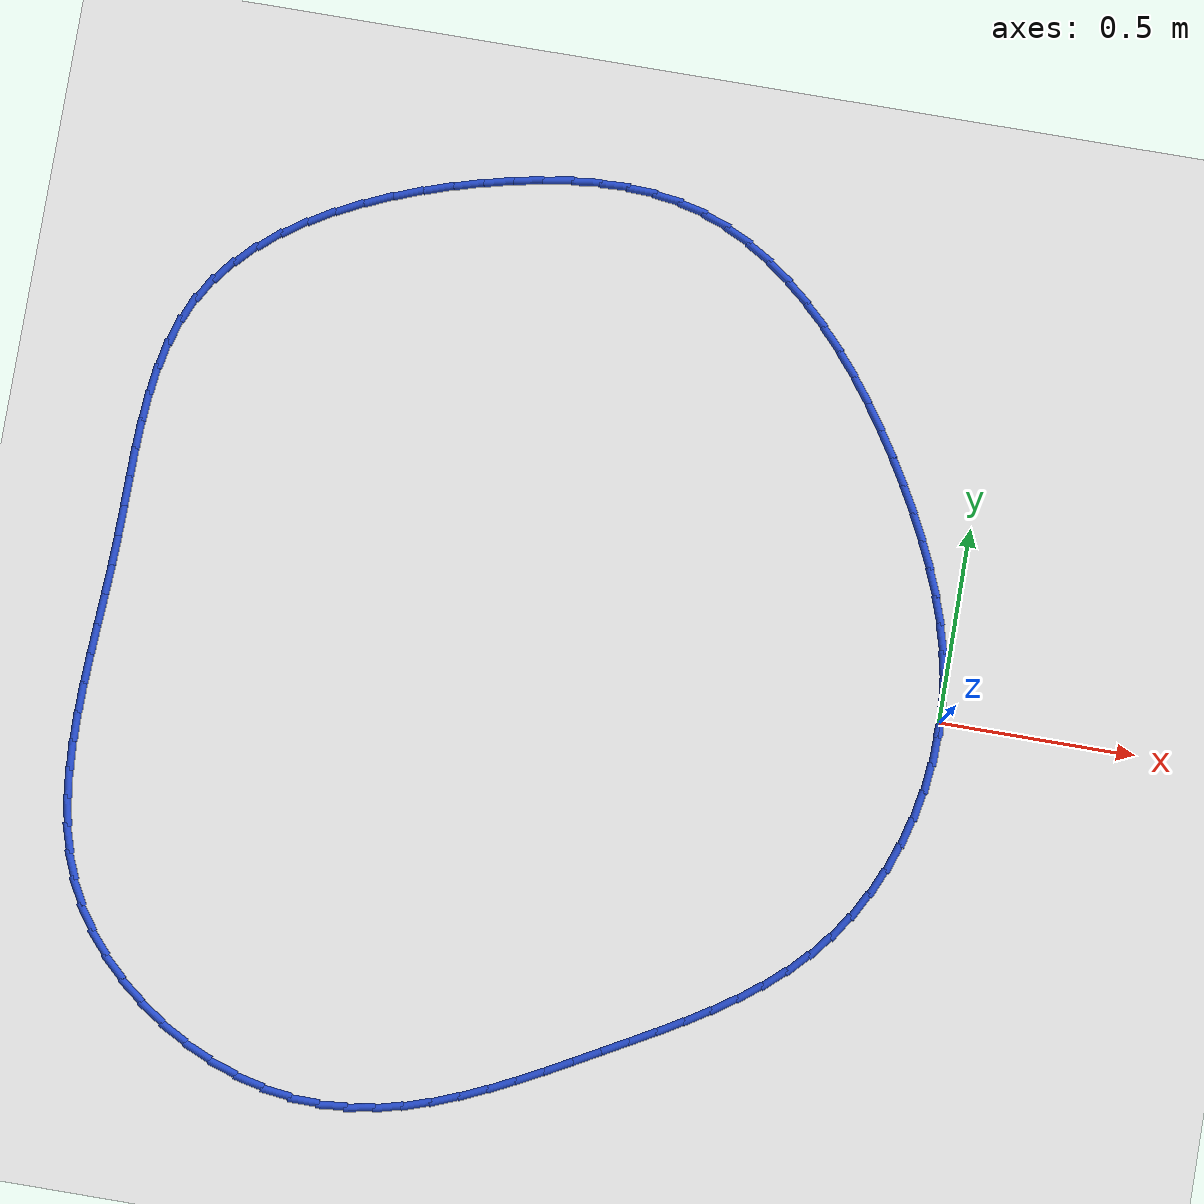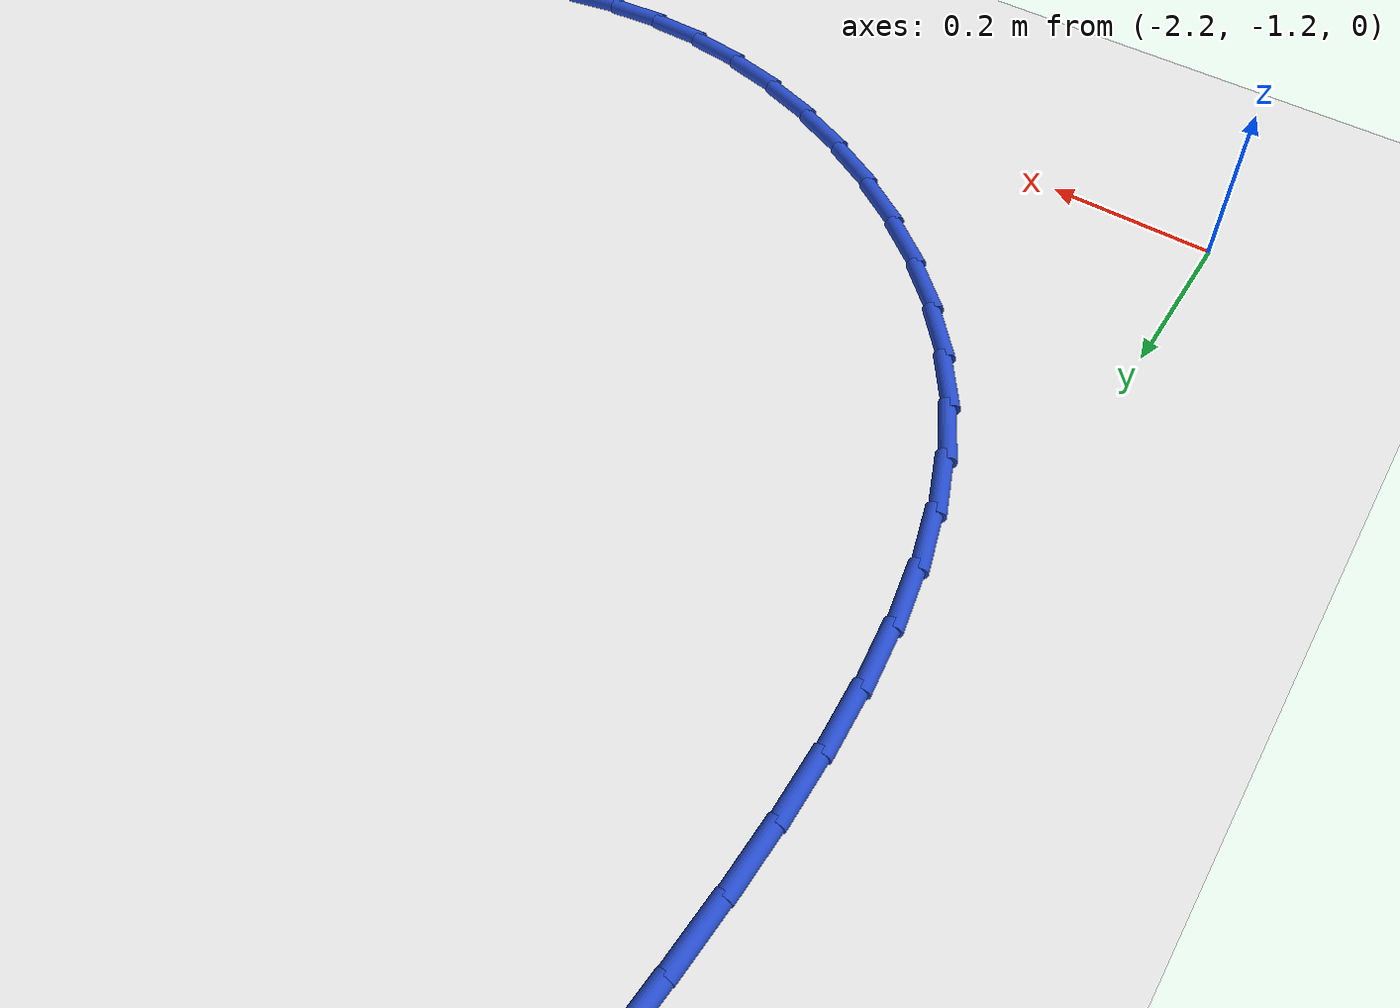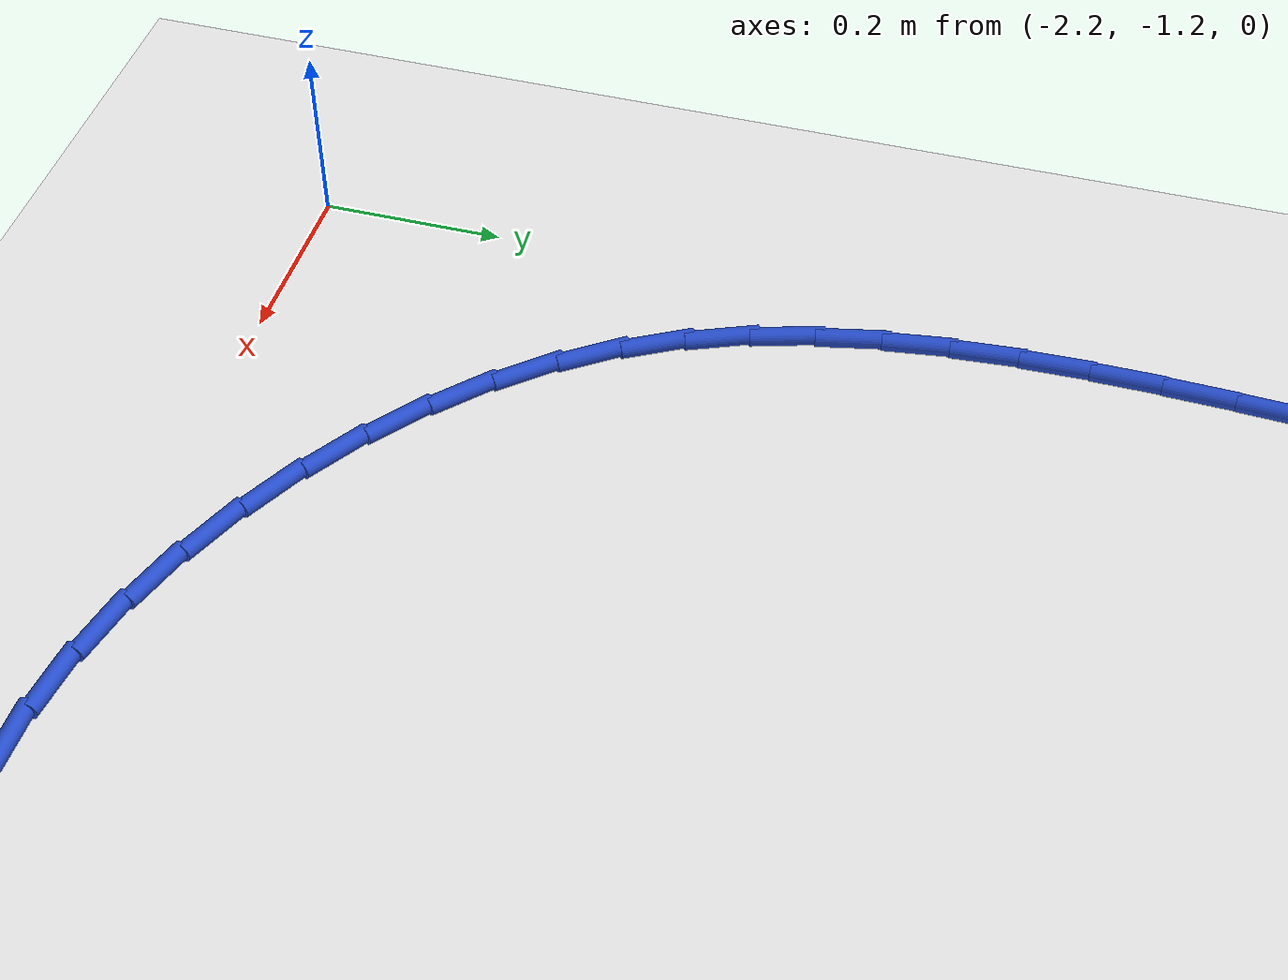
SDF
<sdf version="1.6">
 <world name="default">
  <light name="sun" type="directional">
   <pose>0 0 10 0 -0 0</pose>
   <diffuse>0.8 0.8 0.8 1</diffuse>
   <specular>0.2 0.2 0.2 1</specular>
   <attenuation>
    <range>1000</range>
    <constant>0.9</constant>
    <linear>0.01</linear>
    <quadratic>0.001</quadratic>
   </attenuation>
   <direction>-0.5 0.1 -0.9</direction>
  </light>
  <model name="ground_plane">
   <static>1</static>
   <link name="link">
    <collision name="collision">
     <geometry><plane><normal>0 0 1</normal><size>100 100</size></plane></geometry>
     <surface><friction><ode><mu>100</mu><mu2>50</mu2></ode></friction></surface>
    </collision>
    <visual name="visual">
     <cast_shadows>0</cast_shadows>
     <geometry><plane><normal>0 0 1</normal><size>100 100</size></plane></geometry>
     <material>
      <script><uri>file://media/materials/scripts/gazebo.material</uri><name>Gazebo/WhiteGlow</name></script>
     </material>
    </visual>
   </link>
  </model>
  <gravity>0 0 -9.8</gravity>
  <magnetic_field>6e-06 2.3e-05 -4.2e-05</magnetic_field>
  <atmosphere type="adiabatic"/>
  <physics name="default_physics" default="0" type="ode">
   <max_step_size>0.001</max_step_size>
   <real_time_factor>1</real_time_factor>
   <real_time_update_rate>1000</real_time_update_rate>
  </physics>
  <scene><ambient>0.4 0.4 0.4 1</ambient><background>0.7 0.7 0.7 1</background><shadows>1</shadows></scene>
  <spherical_coordinates>
   <surface_model>EARTH_WGS84</surface_model>
   <latitude_deg>0</latitude_deg>
   <longitude_deg>0</longitude_deg>
   <elevation>0</elevation>
   <heading_deg>0</heading_deg>
  </spherical_coordinates>
  <model name="line">
   <link name="link_0">
    <pose>2.7755575615628914e-17 1.3877787807814457e-16 0.01 0 1.57 -1.5068852918202253</pose>
    <collision name="collision">
     <geometry><cylinder><radius>0.01</radius><length>0.08</length></cylinder></geometry>
    </collision>
    <visual name="visual">
     <material>
      <script><name>Gazebo/Blue</name><uri>file://media/materials/scripts/gazebo.material</uri></script>
     </material>
     <geometry><cylinder><radius>0.01</radius><length>0.08</length></cylinder></geometry>
    </visual>
   </link>
   <link name="link_1">
    <pose>-0.004570571894667977 0.07141720024070906 0.01 0 1.57 -1.4281592210068734</pose>
    <collision name="collision">
     <geometry><cylinder><radius>0.01</radius><length>0.08</length></cylinder></geometry>
    </collision>
    <visual name="visual">
     <material>
      <script><name>Gazebo/Blue</name><uri>file://media/materials/scripts/gazebo.material</uri></script>
     </material>
     <geometry><cylinder><radius>0.01</radius><length>0.08</length></cylinder></geometry>
    </visual>
   </link>
   <link name="link_2">
    <pose>-0.01467478336336173 0.14177472563029664 0.01 0 1.57 -1.3548416416655022</pose>
    <collision name="collision">
     <geometry><cylinder><radius>0.01</radius><length>0.08</length></cylinder></geometry>
    </collision>
    <visual name="visual">
     <material>
      <script><name>Gazebo/Blue</name><uri>file://media/materials/scripts/gazebo.material</uri></script>
     </material>
     <geometry><cylinder><radius>0.01</radius><length>0.08</length></cylinder></geometry>
    </visual>
   </link>
   <link name="link_3">
    <pose>-0.029899119866740573 0.21117321001605954 0.01 0 1.57 -1.2878079500951125</pose>
    <collision name="collision">
     <geometry><cylinder><radius>0.01</radius><length>0.08</length></cylinder></geometry>
    </collision>
    <visual name="visual">
     <material>
      <script><name>Gazebo/Blue</name><uri>file://media/materials/scripts/gazebo.material</uri></script>
     </material>
     <geometry><cylinder><radius>0.01</radius><length>0.08</length></cylinder></geometry>
    </visual>
   </link>
   <link name="link_4">
    <pose>-0.04983006686546391 0.2797132872452947 0.01 0 1.57 -1.2275620438327075</pose>
    <collision name="collision">
     <geometry><cylinder><radius>0.01</radius><length>0.08</length></cylinder></geometry>
    </collision>
    <visual name="visual">
     <material>
      <script><name>Gazebo/Blue</name><uri>file://media/materials/scripts/gazebo.material</uri></script>
     </material>
     <geometry><cylinder><radius>0.01</radius><length>0.08</length></cylinder></geometry>
    </visual>
   </link>
   <link name="link_5">
    <pose>-0.07405410982019106 0.34749559116529866 0.01 0 1.57 -1.1742952343391797</pose>
    <collision name="collision">
     <geometry><cylinder><radius>0.01</radius><length>0.08</length></cylinder></geometry>
    </collision>
    <visual name="visual">
     <material>
      <script><name>Gazebo/Blue</name><uri>file://media/materials/scripts/gazebo.material</uri></script>
     </material>
     <geometry><cylinder><radius>0.01</radius><length>0.08</length></cylinder></geometry>
    </visual>
   </link>
   <link name="link_6">
    <pose>-0.10215773419158147 0.41462075562336875 0.01 0 1.57 -1.1279661740519655</pose>
    <collision name="collision">
     <geometry><cylinder><radius>0.01</radius><length>0.08</length></cylinder></geometry>
    </collision>
    <visual name="visual">
     <material>
      <script><name>Gazebo/Blue</name><uri>file://media/materials/scripts/gazebo.material</uri></script>
     </material>
     <geometry><cylinder><radius>0.01</radius><length>0.08</length></cylinder></geometry>
    </visual>
   </link>
   <link name="link_7">
    <pose>-0.1337274254402945 0.48118941446680136 0.01 0 1.57 -1.0883811219941482</pose>
    <collision name="collision">
     <geometry><cylinder><radius>0.01</radius><length>0.08</length></cylinder></geometry>
    </collision>
    <visual name="visual">
     <material>
      <script><name>Gazebo/Blue</name><uri>file://media/materials/scripts/gazebo.material</uri></script>
     </material>
     <geometry><cylinder><radius>0.01</radius><length>0.08</length></cylinder></geometry>
    </visual>
   </link>
   <link name="link_8">
    <pose>-0.1683496690269895 0.5473022015428936 0.01 0 1.57 -1.055177480647561</pose>
    <collision name="collision">
     <geometry><cylinder><radius>0.01</radius><length>0.08</length></cylinder></geometry>
    </collision>
    <visual name="visual">
     <material>
      <script><name>Gazebo/Blue</name><uri>file://media/materials/scripts/gazebo.material</uri></script>
     </material>
     <geometry><cylinder><radius>0.01</radius><length>0.08</length></cylinder></geometry>
    </visual>
   </link>
   <link name="link_9">
    <pose>-0.20561474490875528 0.613053394124828 0.01 0 1.57 -1.0244017931867717</pose>
    <collision name="collision">
     <geometry><cylinder><radius>0.01</radius><length>0.08</length></cylinder></geometry>
    </collision>
    <visual name="visual">
     <material>
      <script><name>Gazebo/Blue</name><uri>file://media/materials/scripts/gazebo.material</uri></script>
     </material>
     <geometry><cylinder><radius>0.01</radius><length>0.08</length></cylinder></geometry>
    </visual>
   </link>
   <link name="link_10">
    <pose>-0.24527450674808823 0.6782665997797175 0.01 0 1.57 -0.9907218529997827</pose>
    <collision name="collision">
     <geometry><cylinder><radius>0.01</radius><length>0.08</length></cylinder></geometry>
    </collision>
    <visual name="visual">
     <material>
      <script><name>Gazebo/Blue</name><uri>file://media/materials/scripts/gazebo.material</uri></script>
     </material>
     <geometry><cylinder><radius>0.01</radius><length>0.08</length></cylinder></geometry>
    </visual>
   </link>
   <link name="link_11">
    <pose>-0.28729921661326546 0.7423995463738463 0.01 0 1.57 -0.953268824130676</pose>
    <collision name="collision">
     <geometry><cylinder><radius>0.01</radius><length>0.08</length></cylinder></geometry>
    </collision>
    <visual name="visual">
     <material>
      <script><name>Gazebo/Blue</name><uri>file://media/materials/scripts/gazebo.material</uri></script>
     </material>
     <geometry><cylinder><radius>0.01</radius><length>0.08</length></cylinder></geometry>
    </visual>
   </link>
   <link name="link_12">
    <pose>-0.33167462270274517 0.8048840192707029 0.01 0 1.57 -0.9114415036197676</pose>
    <collision name="collision">
     <geometry><cylinder><radius>0.01</radius><length>0.08</length></cylinder></geometry>
    </collision>
    <visual name="visual">
     <material>
      <script><name>Gazebo/Blue</name><uri>file://media/materials/scripts/gazebo.material</uri></script>
     </material>
     <geometry><cylinder><radius>0.01</radius><length>0.08</length></cylinder></geometry>
    </visual>
   </link>
   <link name="link_13">
    <pose>-0.3783864732149859 0.8651518038337761 0.01 0 1.57 -0.8645516532423868</pose>
    <collision name="collision">
     <geometry><cylinder><radius>0.01</radius><length>0.08</length></cylinder></geometry>
    </collision>
    <visual name="visual">
     <material>
      <script><name>Gazebo/Blue</name><uri>file://media/materials/scripts/gazebo.material</uri></script>
     </material>
     <geometry><cylinder><radius>0.01</radius><length>0.08</length></cylinder></geometry>
    </visual>
   </link>
   <link name="link_14">
    <pose>-0.42742051634844586 0.9226346854265541 0.01 0 1.57 -0.8118235441664357</pose>
    <collision name="collision">
     <geometry><cylinder><radius>0.01</radius><length>0.08</length></cylinder></geometry>
    </collision>
    <visual name="visual">
     <material>
      <script><name>Gazebo/Blue</name><uri>file://media/materials/scripts/gazebo.material</uri></script>
     </material>
     <geometry><cylinder><radius>0.01</radius><length>0.08</length></cylinder></geometry>
    </visual>
   </link>
   <link name="link_15">
    <pose>-0.4787625003015832 0.9767644494125252 0.01 0 1.57 -0.7524064236930601</pose>
    <collision name="collision">
     <geometry><cylinder><radius>0.01</radius><length>0.08</length></cylinder></geometry>
    </collision>
    <visual name="visual">
     <material>
      <script><name>Gazebo/Blue</name><uri>file://media/materials/scripts/gazebo.material</uri></script>
     </material>
     <geometry><cylinder><radius>0.01</radius><length>0.08</length></cylinder></geometry>
    </visual>
   </link>
   <link name="link_16">
    <pose>-0.5323981732728567 1.0269728811551784 0.01 0 1.57 -0.685409738260873</pose>
    <collision name="collision">
     <geometry><cylinder><radius>0.01</radius><length>0.08</length></cylinder></geometry>
    </collision>
    <visual name="visual">
     <material>
      <script><name>Gazebo/Blue</name><uri>file://media/materials/scripts/gazebo.material</uri></script>
     </material>
     <geometry><cylinder><radius>0.01</radius><length>0.08</length></cylinder></geometry>
    </visual>
   </link>
   <link name="link_17">
    <pose>-0.5883132834607243 1.0726917660180022 0.01 0 1.57 -0.6099747957804855</pose>
    <collision name="collision">
     <geometry><cylinder><radius>0.01</radius><length>0.08</length></cylinder></geometry>
    </collision>
    <visual name="visual">
     <material>
      <script><name>Gazebo/Blue</name><uri>file://media/materials/scripts/gazebo.material</uri></script>
     </material>
     <geometry><cylinder><radius>0.01</radius><length>0.08</length></cylinder></geometry>
    </visual>
   </link>
   <link name="link_18">
    <pose>-0.6464935790636441 1.1133528893644844 0.01 0 1.57 -0.5253984628705456</pose>
    <collision name="collision">
     <geometry><cylinder><radius>0.01</radius><length>0.08</length></cylinder></geometry>
    </collision>
    <visual name="visual">
     <material>
      <script><name>Gazebo/Blue</name><uri>file://media/materials/scripts/gazebo.material</uri></script>
     </material>
     <geometry><cylinder><radius>0.01</radius><length>0.08</length></cylinder></geometry>
    </visual>
   </link>
   <link name="link_19">
    <pose>-0.7069248082800752 1.1483880365581143 0.01 0 1.57 -0.43131938700887035</pose>
    <collision name="collision">
     <geometry><cylinder><radius>0.01</radius><length>0.08</length></cylinder></geometry>
    </collision>
    <visual name="visual">
     <material>
      <script><name>Gazebo/Blue</name><uri>file://media/materials/scripts/gazebo.material</uri></script>
     </material>
     <geometry><cylinder><radius>0.01</radius><length>0.08</length></cylinder></geometry>
    </visual>
   </link>
   <link name="link_20">
    <pose>-0.7695927193084753 1.1772289929623798 0.01 0 1.57 -0.3279581159730558</pose>
    <collision name="collision">
     <geometry><cylinder><radius>0.01</radius><length>0.08</length></cylinder></geometry>
    </collision>
    <visual name="visual">
     <material>
      <script><name>Gazebo/Blue</name><uri>file://media/materials/scripts/gazebo.material</uri></script>
     </material>
     <geometry><cylinder><radius>0.01</radius><length>0.08</length></cylinder></geometry>
    </visual>
   </link>
   <link name="link_21">
    <pose>-0.8344830474018945 1.1993076035733399 0.01 0 1.57 -0.219819404958218</pose>
    <collision name="collision">
     <geometry><cylinder><radius>0.01</radius><length>0.08</length></cylinder></geometry>
    </collision>
    <visual name="visual">
     <material>
      <script><name>Gazebo/Blue</name><uri>file://media/materials/scripts/gazebo.material</uri></script>
     </material>
     <geometry><cylinder><radius>0.01</radius><length>0.08</length></cylinder></geometry>
    </visual>
   </link>
   <link name="link_22">
    <pose>-0.9015310732003439 1.2142881307932183 0.01 0 1.57 -0.1198401299108558</pose>
    <collision name="collision">
     <geometry><cylinder><radius>0.01</radius><length>0.08</length></cylinder></geometry>
    </collision>
    <visual name="visual">
     <material>
      <script><name>Gazebo/Blue</name><uri>file://media/materials/scripts/gazebo.material</uri></script>
     </material>
     <geometry><cylinder><radius>0.01</radius><length>0.08</length></cylinder></geometry>
    </visual>
   </link>
   <link name="link_23">
    <pose>-0.9705072633853802 1.222594046745936 0.01 0 1.57 -0.03126826414804238</pose>
    <collision name="collision">
     <geometry><cylinder><radius>0.01</radius><length>0.08</length></cylinder></geometry>
    </collision>
    <visual name="visual">
     <material>
      <script><name>Gazebo/Blue</name><uri>file://media/materials/scripts/gazebo.material</uri></script>
     </material>
     <geometry><cylinder><radius>0.01</radius><length>0.08</length></cylinder></geometry>
    </visual>
   </link>
   <link name="link_24">
    <pose>-1.0411484858295872 1.2248035952910719 0.01 0 1.57 0.04589267908729041</pose>
    <collision name="collision">
     <geometry><cylinder><radius>0.01</radius><length>0.08</length></cylinder></geometry>
    </collision>
    <visual name="visual">
     <material>
      <script><name>Gazebo/Blue</name><uri>file://media/materials/scripts/gazebo.material</uri></script>
     </material>
     <geometry><cylinder><radius>0.01</radius><length>0.08</length></cylinder></geometry>
    </visual>
   </link>
   <link name="link_25">
    <pose>-1.1131916084055484 1.2214950202882033 0.01 0 1.57 0.11223800349829531</pose>
    <collision name="collision">
     <geometry><cylinder><radius>0.01</radius><length>0.08</length></cylinder></geometry>
    </collision>
    <visual name="visual">
     <material>
      <script><name>Gazebo/Blue</name><uri>file://media/materials/scripts/gazebo.material</uri></script>
     </material>
     <geometry><cylinder><radius>0.01</radius><length>0.08</length></cylinder></geometry>
    </visual>
   </link>
   <link name="link_26">
    <pose>-1.1863734989858479 1.2132465655969096 0.01 0 1.57 0.1686567016478754</pose>
    <collision name="collision">
     <geometry><cylinder><radius>0.01</radius><length>0.08</length></cylinder></geometry>
    </collision>
    <visual name="visual">
     <material>
      <script><name>Gazebo/Blue</name><uri>file://media/materials/scripts/gazebo.material</uri></script>
     </material>
     <geometry><cylinder><radius>0.01</radius><length>0.08</length></cylinder></geometry>
    </visual>
   </link>
   <link name="link_27">
    <pose>-1.2604310254430677 1.2006364750767677 0.01 0 1.57 0.21611691676653727</pose>
    <collision name="collision">
     <geometry><cylinder><radius>0.01</radius><length>0.08</length></cylinder></geometry>
    </collision>
    <visual name="visual">
     <material>
      <script><name>Gazebo/Blue</name><uri>file://media/materials/scripts/gazebo.material</uri></script>
     </material>
     <geometry><cylinder><radius>0.01</radius><length>0.08</length></cylinder></geometry>
    </visual>
   </link>
   <link name="link_28">
    <pose>-1.3351010556497924 1.184242992587356 0.01 0 1.57 0.2557997736786115</pose>
    <collision name="collision">
     <geometry><cylinder><radius>0.01</radius><length>0.08</length></cylinder></geometry>
    </collision>
    <visual name="visual">
     <material>
      <script><name>Gazebo/Blue</name><uri>file://media/materials/scripts/gazebo.material</uri></script>
     </material>
     <geometry><cylinder><radius>0.01</radius><length>0.08</length></cylinder></geometry>
    </visual>
   </link>
   <link name="link_29">
    <pose>-1.410107930702011 1.164626514363667 0.01 0 1.57 0.29356695686492973</pose>
    <collision name="collision">
     <geometry><cylinder><radius>0.01</radius><length>0.08</length></cylinder></geometry>
    </collision>
    <visual name="visual">
     <material>
      <script><name>Gazebo/Blue</name><uri>file://media/materials/scripts/gazebo.material</uri></script>
     </material>
     <geometry><cylinder><radius>0.01</radius><length>0.08</length></cylinder></geometry>
    </visual>
   </link>
   <link name="link_30">
    <pose>-1.4849362127376498 1.142005809663047 0.01 0 1.57 0.3347681686645047</pose>
    <collision name="collision">
     <geometry><cylinder><radius>0.01</radius><length>0.08</length></cylinder></geometry>
    </collision>
    <visual name="visual">
     <material>
      <script><name>Gazebo/Blue</name><uri>file://media/materials/scripts/gazebo.material</uri></script>
     </material>
     <geometry><cylinder><radius>0.01</radius><length>0.08</length></cylinder></geometry>
    </visual>
   </link>
   <link name="link_31">
    <pose>-1.5588548121957997 1.11629239626969 0.01 0 1.57 0.3804765004712375</pose>
    <collision name="collision">
     <geometry><cylinder><radius>0.01</radius><length>0.08</length></cylinder></geometry>
    </collision>
    <visual name="visual">
     <material>
      <script><name>Gazebo/Blue</name><uri>file://media/materials/scripts/gazebo.material</uri></script>
     </material>
     <geometry><cylinder><radius>0.01</radius><length>0.08</length></cylinder></geometry>
    </visual>
   </link>
   <link name="link_32">
    <pose>-1.6311249552106193 1.0873868436932184 0.01 0 1.57 0.4317407036281792</pose>
    <collision name="collision">
     <geometry><cylinder><radius>0.01</radius><length>0.08</length></cylinder></geometry>
    </collision>
    <visual name="visual">
     <material>
      <script><name>Gazebo/Blue</name><uri>file://media/materials/scripts/gazebo.material</uri></script>
     </material>
     <geometry><cylinder><radius>0.01</radius><length>0.08</length></cylinder></geometry>
    </visual>
   </link>
   <link name="link_33">
    <pose>-1.7010078679162686 1.0551897214432557 0.01 0 1.57 0.48977581661353925</pose>
    <collision name="collision">
     <geometry><cylinder><radius>0.01</radius><length>0.08</length></cylinder></geometry>
    </collision>
    <visual name="visual">
     <material>
      <script><name>Gazebo/Blue</name><uri>file://media/materials/scripts/gazebo.material</uri></script>
     </material>
     <geometry><cylinder><radius>0.01</radius><length>0.08</length></cylinder></geometry>
    </visual>
   </link>
   <link name="link_34">
    <pose>-1.7677647764469069 1.019601599029424 0.01 0 1.57 0.5559763439568868</pose>
    <collision name="collision">
     <geometry><cylinder><radius>0.01</radius><length>0.08</length></cylinder></geometry>
    </collision>
    <visual name="visual">
     <material>
      <script><name>Gazebo/Blue</name><uri>file://media/materials/scripts/gazebo.material</uri></script>
     </material>
     <geometry><cylinder><radius>0.01</radius><length>0.08</length></cylinder></geometry>
    </visual>
   </link>
   <link name="link_35">
    <pose>-1.8306569069366943 0.9805230459613474 0.01 0 1.57 0.6318943533631234</pose>
    <collision name="collision">
     <geometry><cylinder><radius>0.01</radius><length>0.08</length></cylinder></geometry>
    </collision>
    <visual name="visual">
     <material>
      <script><name>Gazebo/Blue</name><uri>file://media/materials/scripts/gazebo.material</uri></script>
     </material>
     <geometry><cylinder><radius>0.01</radius><length>0.08</length></cylinder></geometry>
    </visual>
   </link>
   <link name="link_36">
    <pose>-1.888945485519789 0.9378546317486491 0.01 0 1.57 0.7191479856915383</pose>
    <collision name="collision">
     <geometry><cylinder><radius>0.01</radius><length>0.08</length></cylinder></geometry>
    </collision>
    <visual name="visual">
     <material>
      <script><name>Gazebo/Blue</name><uri>file://media/materials/scripts/gazebo.material</uri></script>
     </material>
     <geometry><cylinder><radius>0.01</radius><length>0.08</length></cylinder></geometry>
    </visual>
   </link>
   <link name="link_37">
    <pose>-1.9418917383303511 0.891496925900951 0.01 0 1.57 0.8192088108098029</pose>
    <collision name="collision">
     <geometry><cylinder><radius>0.01</radius><length>0.08</length></cylinder></geometry>
    </collision>
    <visual name="visual">
     <material>
      <script><name>Gazebo/Blue</name><uri>file://media/materials/scripts/gazebo.material</uri></script>
     </material>
     <geometry><cylinder><radius>0.01</radius><length>0.08</length></cylinder></geometry>
    </visual>
   </link>
   <link name="link_38">
    <pose>-1.9887568915025406 0.8413504979278768 0.01 0 1.57 0.9330125830756663</pose>
    <collision name="collision">
     <geometry><cylinder><radius>0.01</radius><length>0.08</length></cylinder></geometry>
    </collision>
    <visual name="visual">
     <material>
      <script><name>Gazebo/Blue</name><uri>file://media/materials/scripts/gazebo.material</uri></script>
     </material>
     <geometry><cylinder><radius>0.01</radius><length>0.08</length></cylinder></geometry>
    </visual>
   </link>
   <link name="link_39">
    <pose>-2.0288021711705166 0.7873159173390495 0.01 0 1.57 1.060236686439888</pose>
    <collision name="collision">
     <geometry><cylinder><radius>0.01</radius><length>0.08</length></cylinder></geometry>
    </collision>
    <visual name="visual">
     <material>
      <script><name>Gazebo/Blue</name><uri>file://media/materials/scripts/gazebo.material</uri></script>
     </material>
     <geometry><cylinder><radius>0.01</radius><length>0.08</length></cylinder></geometry>
    </visual>
   </link>
   <link name="link_40">
    <pose>-2.0612984154397704 0.7292966163073898 0.01 0 1.57 1.1887985320025471</pose>
    <collision name="collision">
     <geometry><cylinder><radius>0.01</radius><length>0.08</length></cylinder></geometry>
    </collision>
    <visual name="visual">
     <material>
      <script><name>Gazebo/Blue</name><uri>file://media/materials/scripts/gazebo.material</uri></script>
     </material>
     <geometry><cylinder><radius>0.01</radius><length>0.08</length></cylinder></geometry>
    </visual>
   </link>
   <link name="link_41">
    <pose>-2.0861681778938355 0.6673901226720739 0.01 0 1.57 1.2989967847882893</pose>
    <collision name="collision">
     <geometry><cylinder><radius>0.01</radius><length>0.08</length></cylinder></geometry>
    </collision>
    <visual name="visual">
     <material>
      <script><name>Gazebo/Blue</name><uri>file://media/materials/scripts/gazebo.material</uri></script>
     </material>
     <geometry><cylinder><radius>0.01</radius><length>0.08</length></cylinder></geometry>
    </visual>
   </link>
   <link name="link_42">
    <pose>-2.1043898308647657 0.6020084110674552 0.01 0 1.57 1.3879877029547052</pose>
    <collision name="collision">
     <geometry><cylinder><radius>0.01</radius><length>0.08</length></cylinder></geometry>
    </collision>
    <visual name="visual">
     <material>
      <script><name>Gazebo/Blue</name><uri>file://media/materials/scripts/gazebo.material</uri></script>
     </material>
     <geometry><cylinder><radius>0.01</radius><length>0.08</length></cylinder></geometry>
    </visual>
   </link>
   <link name="link_43">
    <pose>-2.117038124305312 0.5335921595715386 0.01 0 1.57 1.4565283449143323</pose>
    <collision name="collision">
     <geometry><cylinder><radius>0.01</radius><length>0.08</length></cylinder></geometry>
    </collision>
    <visual name="visual">
     <material>
      <script><name>Gazebo/Blue</name><uri>file://media/materials/scripts/gazebo.material</uri></script>
     </material>
     <geometry><cylinder><radius>0.01</radius><length>0.08</length></cylinder></geometry>
    </visual>
   </link>
   <link name="link_44">
    <pose>-2.125187808168219 0.4625820462623289 0.01 0 1.57 1.5062931070265098</pose>
    <collision name="collision">
     <geometry><cylinder><radius>0.01</radius><length>0.08</length></cylinder></geometry>
    </collision>
    <visual name="visual">
     <material>
      <script><name>Gazebo/Blue</name><uri>file://media/materials/scripts/gazebo.material</uri></script>
     </material>
     <geometry><cylinder><radius>0.01</radius><length>0.08</length></cylinder></geometry>
    </visual>
   </link>
   <link name="link_45">
    <pose>-2.129913632406236 0.38941874921783115 0.01 0 1.57 1.539064889740989</pose>
    <collision name="collision">
     <geometry><cylinder><radius>0.01</radius><length>0.08</length></cylinder></geometry>
    </collision>
    <visual name="visual">
     <material>
      <script><name>Gazebo/Blue</name><uri>file://media/materials/scripts/gazebo.material</uri></script>
     </material>
     <geometry><cylinder><radius>0.01</radius><length>0.08</length></cylinder></geometry>
    </visual>
   </link>
   <link name="link_46">
    <pose>-2.1322903469721126 0.3145429465160502 0.01 0 1.57 1.5563207896692506</pose>
    <collision name="collision">
     <geometry><cylinder><radius>0.01</radius><length>0.08</length></cylinder></geometry>
    </collision>
    <visual name="visual">
     <material>
      <script><name>Gazebo/Blue</name><uri>file://media/materials/scripts/gazebo.material</uri></script>
     </material>
     <geometry><cylinder><radius>0.01</radius><length>0.08</length></cylinder></geometry>
    </visual>
   </link>
   <link name="link_47">
    <pose>-2.133392701818595 0.2383953162349909 0.01 0 1.57 1.5590696704119282</pose>
    <collision name="collision">
     <geometry><cylinder><radius>0.01</radius><length>0.08</length></cylinder></geometry>
    </collision>
    <visual name="visual">
     <material>
      <script><name>Gazebo/Blue</name><uri>file://media/materials/scripts/gazebo.material</uri></script>
     </material>
     <geometry><cylinder><radius>0.01</radius><length>0.08</length></cylinder></geometry>
    </visual>
   </link>
   <link name="link_48">
    <pose>-2.1342954468984323 0.16141653645265874 0.01 0 1.57 1.5478471858867513</pose>
    <collision name="collision">
     <geometry><cylinder><radius>0.01</radius><length>0.08</length></cylinder></geometry>
    </collision>
    <visual name="visual">
     <material>
      <script><name>Gazebo/Blue</name><uri>file://media/materials/scripts/gazebo.material</uri></script>
     </material>
     <geometry><cylinder><radius>0.01</radius><length>0.08</length></cylinder></geometry>
    </visual>
   </link>
   <link name="link_49">
    <pose>-2.1360713222809458 0.08404703421229069 0.01 0 1.57 1.5291230426263862</pose>
    <collision name="collision">
     <geometry><cylinder><radius>0.01</radius><length>0.08</length></cylinder></geometry>
    </collision>
    <visual name="visual">
     <material>
      <script><name>Gazebo/Blue</name><uri>file://media/materials/scripts/gazebo.material</uri></script>
     </material>
     <geometry><cylinder><radius>0.01</radius><length>0.08</length></cylinder></geometry>
    </visual>
   </link>
   <link name="link_50">
    <pose>-2.1392979373990024 0.006665394660066698 0.01 0 1.57 1.5175239455473737</pose>
    <collision name="collision">
     <geometry><cylinder><radius>0.01</radius><length>0.08</length></cylinder></geometry>
    </collision>
    <visual name="visual">
     <material>
      <script><name>Gazebo/Blue</name><uri>file://media/materials/scripts/gazebo.material</uri></script>
     </material>
     <geometry><cylinder><radius>0.01</radius><length>0.08</length></cylinder></geometry>
    </visual>
   </link>
   <link name="link_51">
    <pose>-2.1434122027142877 -0.07049227054494246 0.01 0 1.57 1.5150813720474887</pose>
    <collision name="collision">
     <geometry><cylinder><radius>0.01</radius><length>0.08</length></cylinder></geometry>
    </collision>
    <visual name="visual">
     <material>
      <script><name>Gazebo/Blue</name><uri>file://media/materials/scripts/gazebo.material</uri></script>
     </material>
     <geometry><cylinder><radius>0.01</radius><length>0.08</length></cylinder></geometry>
    </visual>
   </link>
   <link name="link_52">
    <pose>-2.1476909470591057 -0.14720984396522319 0.01 0 1.57 1.5219267027107635</pose>
    <collision name="collision">
     <geometry><cylinder><radius>0.01</radius><length>0.08</length></cylinder></geometry>
    </collision>
    <visual name="visual">
     <material>
      <script><name>Gazebo/Blue</name><uri>file://media/materials/scripts/gazebo.material</uri></script>
     </material>
     <geometry><cylinder><radius>0.01</radius><length>0.08</length></cylinder></geometry>
    </visual>
   </link>
   <link name="link_53">
    <pose>-2.151410999265766 -0.22327120816326204 0.01 0 1.57 1.5383802339444728</pose>
    <collision name="collision">
     <geometry><cylinder><radius>0.01</radius><length>0.08</length></cylinder></geometry>
    </collision>
    <visual name="visual">
     <material>
      <script><name>Gazebo/Blue</name><uri>file://media/materials/scripts/gazebo.material</uri></script>
     </material>
     <geometry><cylinder><radius>0.01</radius><length>0.08</length></cylinder></geometry>
    </visual>
   </link>
   <link name="link_54">
    <pose>-2.1538491881665727 -0.2984602457015455 0.01 0 1.57 1.564950901358341</pose>
    <collision name="collision">
     <geometry><cylinder><radius>0.01</radius><length>0.08</length></cylinder></geometry>
    </collision>
    <visual name="visual">
     <material>
      <script><name>Gazebo/Blue</name><uri>file://media/materials/scripts/gazebo.material</uri></script>
     </material>
     <geometry><cylinder><radius>0.01</radius><length>0.08</length></cylinder></geometry>
    </visual>
   </link>
   <link name="link_55">
    <pose>-2.1542823425938322 -0.3725608391425599 0.01 0 1.57 -1.5392796189480158</pose>
    <collision name="collision">
     <geometry><cylinder><radius>0.01</radius><length>0.08</length></cylinder></geometry>
    </collision>
    <visual name="visual">
     <material>
      <script><name>Gazebo/Blue</name><uri>file://media/materials/scripts/gazebo.material</uri></script>
     </material>
     <geometry><cylinder><radius>0.01</radius><length>0.08</length></cylinder></geometry>
    </visual>
   </link>
   <link name="link_56">
    <pose>-2.151987291379851 -0.44535687104879174 0.01 0 1.57 -1.4903473999667016</pose>
    <collision name="collision">
     <geometry><cylinder><radius>0.01</radius><length>0.08</length></cylinder></geometry>
    </collision>
    <visual name="visual">
     <material>
      <script><name>Gazebo/Blue</name><uri>file://media/materials/scripts/gazebo.material</uri></script>
     </material>
     <geometry><cylinder><radius>0.01</radius><length>0.08</length></cylinder></geometry>
    </visual>
   </link>
   <link name="link_57">
    <pose>-2.1462408633569354 -0.5166322239827272 0.01 0 1.57 -1.429083943445047</pose>
    <collision name="collision">
     <geometry><cylinder><radius>0.01</radius><length>0.08</length></cylinder></geometry>
    </collision>
    <visual name="visual">
     <material>
      <script><name>Gazebo/Blue</name><uri>file://media/materials/scripts/gazebo.material</uri></script>
     </material>
     <geometry><cylinder><radius>0.01</radius><length>0.08</length></cylinder></geometry>
    </visual>
   </link>
   <link name="link_58">
    <pose>-2.136319887357392 -0.5861707805068523 0.01 0 1.57 -1.3549538445560314</pose>
    <collision name="collision">
     <geometry><cylinder><radius>0.01</radius><length>0.08</length></cylinder></geometry>
    </collision>
    <visual name="visual">
     <material>
      <script><name>Gazebo/Blue</name><uri>file://media/materials/scripts/gazebo.material</uri></script>
     </material>
     <geometry><cylinder><radius>0.01</radius><length>0.08</length></cylinder></geometry>
    </visual>
   </link>
   <link name="link_59">
    <pose>-2.1215011922135254 -0.653756423183655 0.01 0 1.57 -1.267954709560403</pose>
    <collision name="collision">
     <geometry><cylinder><radius>0.01</radius><length>0.08</length></cylinder></geometry>
    </collision>
    <visual name="visual">
     <material>
      <script><name>Gazebo/Blue</name><uri>file://media/materials/scripts/gazebo.material</uri></script>
     </material>
     <geometry><cylinder><radius>0.01</radius><length>0.08</length></cylinder></geometry>
    </visual>
   </link>
   <link name="link_60">
    <pose>-2.1010616067576438 -0.7191730345756208 0.01 0 1.57 -1.1689891709882854</pose>
    <collision name="collision">
     <geometry><cylinder><radius>0.01</radius><length>0.08</length></cylinder></geometry>
    </collision>
    <visual name="visual">
     <material>
      <script><name>Gazebo/Blue</name><uri>file://media/materials/scripts/gazebo.material</uri></script>
     </material>
     <geometry><cylinder><radius>0.01</radius><length>0.08</length></cylinder></geometry>
    </visual>
   </link>
   <link name="link_61">
    <pose>-2.0742779598220515 -0.7822044972452359 0.01 0 1.57 -1.0601824232571266</pose>
    <collision name="collision">
     <geometry><cylinder><radius>0.01</radius><length>0.08</length></cylinder></geometry>
    </collision>
    <visual name="visual">
     <material>
      <script><name>Gazebo/Blue</name><uri>file://media/materials/scripts/gazebo.material</uri></script>
     </material>
     <geometry><cylinder><radius>0.01</radius><length>0.08</length></cylinder></geometry>
    </visual>
   </link>
   <link name="link_62">
    <pose>-2.0404270802709257 -0.8426346937487661 0.01 0 1.57 -0.9476066130716909</pose>
    <collision name="collision">
     <geometry><cylinder><radius>0.01</radius><length>0.08</length></cylinder></geometry>
    </collision>
    <visual name="visual">
     <material>
      <script><name>Gazebo/Blue</name><uri>file://media/materials/scripts/gazebo.material</uri></script>
     </material>
     <geometry><cylinder><radius>0.01</radius><length>0.08</length></cylinder></geometry>
    </visual>
   </link>
   <link name="link_63">
    <pose>-1.999056725343606 -0.9001946163548886 0.01 0 1.57 -0.8432721789492172</pose>
    <collision name="collision">
     <geometry><cylinder><radius>0.01</radius><length>0.08</length></cylinder></geometry>
    </collision>
    <visual name="visual">
     <material>
      <script><name>Gazebo/Blue</name><uri>file://media/materials/scripts/gazebo.material</uri></script>
     </material>
     <geometry><cylinder><radius>0.01</radius><length>0.08</length></cylinder></geometry>
    </visual>
   </link>
   <link name="link_64">
    <pose>-1.950782475808012 -0.954406798201767 0.01 0 1.57 -0.7475332215439612</pose>
    <collision name="collision">
     <geometry><cylinder><radius>0.01</radius><length>0.08</length></cylinder></geometry>
    </collision>
    <visual name="visual">
     <material>
      <script><name>Gazebo/Blue</name><uri>file://media/materials/scripts/gazebo.material</uri></script>
     </material>
     <geometry><cylinder><radius>0.01</radius><length>0.08</length></cylinder></geometry>
    </visual>
   </link>
   <link name="link_65">
    <pose>-1.8964829538971975 -1.0047424218123697 0.01 0 1.57 -0.6578314044525287</pose>
    <collision name="collision">
     <geometry><cylinder><radius>0.01</radius><length>0.08</length></cylinder></geometry>
    </collision>
    <visual name="visual">
     <material>
      <script><name>Gazebo/Blue</name><uri>file://media/materials/scripts/gazebo.material</uri></script>
     </material>
     <geometry><cylinder><radius>0.01</radius><length>0.08</length></cylinder></geometry>
    </visual>
   </link>
   <link name="link_66">
    <pose>-1.8370367818442184 -1.0506726697096658 0.01 0 1.57 -0.5717474570415242</pose>
    <collision name="collision">
     <geometry><cylinder><radius>0.01</radius><length>0.08</length></cylinder></geometry>
    </collision>
    <visual name="visual">
     <material>
      <script><name>Gazebo/Blue</name><uri>file://media/materials/scripts/gazebo.material</uri></script>
     </material>
     <geometry><cylinder><radius>0.01</radius><length>0.08</length></cylinder></geometry>
    </visual>
   </link>
   <link name="link_67">
    <pose>-1.773322581882128 -1.0916687244166245 0.01 0 1.57 -0.48698775816085094</pose>
    <collision name="collision">
     <geometry><cylinder><radius>0.01</radius><length>0.08</length></cylinder></geometry>
    </collision>
    <visual name="visual">
     <material>
      <script><name>Gazebo/Blue</name><uri>file://media/materials/scripts/gazebo.material</uri></script>
     </material>
     <geometry><cylinder><radius>0.01</radius><length>0.08</length></cylinder></geometry>
    </visual>
   </link>
   <link name="link_68">
    <pose>-1.706218976243982 -1.1272017684562141 0.01 0 1.57 -0.4013242219263359</pose>
    <collision name="collision">
     <geometry><cylinder><radius>0.01</radius><length>0.08</length></cylinder></geometry>
    </collision>
    <visual name="visual">
     <material>
      <script><name>Gazebo/Blue</name><uri>file://media/materials/scripts/gazebo.material</uri></script>
     </material>
     <geometry><cylinder><radius>0.01</radius><length>0.08</length></cylinder></geometry>
    </visual>
   </link>
   <link name="link_69">
    <pose>-1.6366045871628345 -1.1567429843514039 0.01 0 1.57 -0.31252274812031583</pose>
    <collision name="collision">
     <geometry><cylinder><radius>0.01</radius><length>0.08</length></cylinder></geometry>
    </collision>
    <visual name="visual">
     <material>
      <script><name>Gazebo/Blue</name><uri>file://media/materials/scripts/gazebo.material</uri></script>
     </material>
     <geometry><cylinder><radius>0.01</radius><length>0.08</length></cylinder></geometry>
    </visual>
   </link>
   <link name="link_70">
    <pose>-1.5653580368717401 -1.1797635546251626 0.01 0 1.57 -0.21828624623764403</pose>
    <collision name="collision">
     <geometry><cylinder><radius>0.01</radius><length>0.08</length></cylinder></geometry>
    </collision>
    <visual name="visual">
     <material>
      <script><name>Gazebo/Blue</name><uri>file://media/materials/scripts/gazebo.material</uri></script>
     </material>
     <geometry><cylinder><radius>0.01</radius><length>0.08</length></cylinder></geometry>
    </visual>
   </link>
   <link name="link_71">
    <pose>-1.4933579476037542 -1.195734661800459 0.01 0 1.57 -0.11624507783454678</pose>
    <collision name="collision">
     <geometry><cylinder><radius>0.01</radius><length>0.08</length></cylinder></geometry>
    </collision>
    <visual name="visual">
     <material>
      <script><name>Gazebo/Blue</name><uri>file://media/materials/scripts/gazebo.material</uri></script>
     </material>
     <geometry><cylinder><radius>0.01</radius><length>0.08</length></cylinder></geometry>
    </visual>
   </link>
   <link name="link_72">
    <pose>-1.4214828412103928 -1.2041276277251158 0.01 0 1.57 -0.007956110278991929</pose>
    <collision name="collision">
     <geometry><cylinder><radius>0.01</radius><length>0.08</length></cylinder></geometry>
    </collision>
    <visual name="visual">
     <material>
      <script><name>Gazebo/Blue</name><uri>file://media/materials/scripts/gazebo.material</uri></script>
     </material>
     <geometry><cylinder><radius>0.01</radius><length>0.08</length></cylinder></geometry>
    </visual>
   </link>
   <link name="link_73">
    <pose>-1.3504099871403508 -1.2046931031214627 0.01 0 1.57 0.09437997620190475</pose>
    <collision name="collision">
     <geometry><cylinder><radius>0.01</radius><length>0.08</length></cylinder></geometry>
    </collision>
    <visual name="visual">
     <material>
      <script><name>Gazebo/Blue</name><uri>file://media/materials/scripts/gazebo.material</uri></script>
     </material>
     <geometry><cylinder><radius>0.01</radius><length>0.08</length></cylinder></geometry>
    </visual>
   </link>
   <link name="link_74">
    <pose>-1.2801937177913636 -1.1980463460550952 0.01 0 1.57 0.18617813462103908</pose>
    <collision name="collision">
     <geometry><cylinder><radius>0.01</radius><length>0.08</length></cylinder></geometry>
    </collision>
    <visual name="visual">
     <material>
      <script><name>Gazebo/Blue</name><uri>file://media/materials/scripts/gazebo.material</uri></script>
     </material>
     <geometry><cylinder><radius>0.01</radius><length>0.08</length></cylinder></geometry>
    </visual>
   </link>
   <link name="link_75">
    <pose>-1.2107682056065294 -1.1849693909600827 0.01 0 1.57 0.26609754125113394</pose>
    <collision name="collision">
     <geometry><cylinder><radius>0.01</radius><length>0.08</length></cylinder></geometry>
    </collision>
    <visual name="visual">
     <material>
      <script><name>Gazebo/Blue</name><uri>file://media/materials/scripts/gazebo.material</uri></script>
     </material>
     <geometry><cylinder><radius>0.01</radius><length>0.08</length></cylinder></geometry>
    </visual>
   </link>
   <link name="link_76">
    <pose>-1.1420676230289455 -1.166244272270496 0.01 0 1.57 0.3337485503352295</pose>
    <collision name="collision">
     <geometry><cylinder><radius>0.01</radius><length>0.08</length></cylinder></geometry>
    </collision>
    <visual name="visual">
     <material>
      <script><name>Gazebo/Blue</name><uri>file://media/materials/scripts/gazebo.material</uri></script>
     </material>
     <geometry><cylinder><radius>0.01</radius><length>0.08</length></cylinder></geometry>
    </visual>
   </link>
   <link name="link_77">
    <pose>-1.0740261425017097 -1.142653024420405 0.01 0 1.57 0.38937108187967145</pose>
    <collision name="collision">
     <geometry><cylinder><radius>0.01</radius><length>0.08</length></cylinder></geometry>
    </collision>
    <visual name="visual">
     <material>
      <script><name>Gazebo/Blue</name><uri>file://media/materials/scripts/gazebo.material</uri></script>
     </material>
     <geometry><cylinder><radius>0.01</radius><length>0.08</length></cylinder></geometry>
    </visual>
   </link>
   <link name="link_78">
    <pose>-1.0065779364679197 -1.1149776818438797 0.01 0 1.57 0.43352696845425537</pose>
    <collision name="collision">
     <geometry><cylinder><radius>0.01</radius><length>0.08</length></cylinder></geometry>
    </collision>
    <visual name="visual">
     <material>
      <script><name>Gazebo/Blue</name><uri>file://media/materials/scripts/gazebo.material</uri></script>
     </material>
     <geometry><cylinder><radius>0.01</radius><length>0.08</length></cylinder></geometry>
    </visual>
   </link>
   <link name="link_79">
    <pose>-0.9396571773706728 -1.0840002789749903 0.01 0 1.57 0.4668667515453946</pose>
    <collision name="collision">
     <geometry><cylinder><radius>0.01</radius><length>0.08</length></cylinder></geometry>
    </collision>
    <visual name="visual">
     <material>
      <script><name>Gazebo/Blue</name><uri>file://media/materials/scripts/gazebo.material</uri></script>
     </material>
     <geometry><cylinder><radius>0.01</radius><length>0.08</length></cylinder></geometry>
    </visual>
   </link>
   <link name="link_80">
    <pose>-0.8731980376530666 -1.0505028502478069 0.01 0 1.57 0.48997658966141044</pose>
    <collision name="collision">
     <geometry><cylinder><radius>0.01</radius><length>0.08</length></cylinder></geometry>
    </collision>
    <visual name="visual">
     <material>
      <script><name>Gazebo/Blue</name><uri>file://media/materials/scripts/gazebo.material</uri></script>
     </material>
     <geometry><cylinder><radius>0.01</radius><length>0.08</length></cylinder></geometry>
    </visual>
   </link>
   <link name="link_81">
    <pose>-0.8071346897581994 -1.0152674300964004 0.01 0 1.57 0.5032871243602443</pose>
    <collision name="collision">
     <geometry><cylinder><radius>0.01</radius><length>0.08</length></cylinder></geometry>
    </collision>
    <visual name="visual">
     <material>
      <script><name>Gazebo/Blue</name><uri>file://media/materials/scripts/gazebo.material</uri></script>
     </material>
     <geometry><cylinder><radius>0.01</radius><length>0.08</length></cylinder></geometry>
    </visual>
   </link>
   <link name="link_82">
    <pose>-0.7414013061291678 -0.9790760529548397 0.01 0 1.57 0.5070636574130085</pose>
    <collision name="collision">
     <geometry><cylinder><radius>0.01</radius><length>0.08</length></cylinder></geometry>
    </collision>
    <visual name="visual">
     <material>
      <script><name>Gazebo/Blue</name><uri>file://media/materials/scripts/gazebo.material</uri></script>
     </material>
     <geometry><cylinder><radius>0.01</radius><length>0.08</length></cylinder></geometry>
    </visual>
   </link>
   <link name="link_83">
    <pose>-0.6759332530363394 -0.9427078977784689 0.01 0 1.57 0.507439752950252</pose>
    <collision name="collision">
     <geometry><cylinder><radius>0.01</radius><length>0.08</length></cylinder></geometry>
    </collision>
    <visual name="visual">
     <material>
      <script><name>Gazebo/Blue</name><uri>file://media/materials/scripts/gazebo.material</uri></script>
     </material>
     <geometry><cylinder><radius>0.01</radius><length>0.08</length></cylinder></geometry>
    </visual>
   </link>
   <link name="link_84">
    <pose>-0.610843326548904 -0.9065177546440191 0.01 0 1.57 0.5170554055040754</pose>
    <collision name="collision">
     <geometry><cylinder><radius>0.01</radius><length>0.08</length></cylinder></geometry>
    </collision>
    <visual name="visual">
     <material>
      <script><name>Gazebo/Blue</name><uri>file://media/materials/scripts/gazebo.material</uri></script>
     </material>
     <geometry><cylinder><radius>0.01</radius><length>0.08</length></cylinder></geometry>
    </visual>
   </link>
   <link name="link_85">
    <pose>-0.5466082547418674 -0.8699899358569289 0.01 0 1.57 0.5377559414047076</pose>
    <collision name="collision">
     <geometry><cylinder><radius>0.01</radius><length>0.08</length></cylinder></geometry>
    </collision>
    <visual name="visual">
     <material>
      <script><name>Gazebo/Blue</name><uri>file://media/materials/scripts/gazebo.material</uri></script>
     </material>
     <geometry><cylinder><radius>0.01</radius><length>0.08</length></cylinder></geometry>
    </visual>
   </link>
   <link name="link_86">
    <pose>-0.4837494105836529 -0.8325019689752114 0.01 0 1.57 0.5699575304226159</pose>
    <collision name="collision">
     <geometry><cylinder><radius>0.01</radius><length>0.08</length></cylinder></geometry>
    </collision>
    <visual name="visual">
     <material>
      <script><name>Gazebo/Blue</name><uri>file://media/materials/scripts/gazebo.material</uri></script>
     </material>
     <geometry><cylinder><radius>0.01</radius><length>0.08</length></cylinder></geometry>
    </visual>
   </link>
   <link name="link_87">
    <pose>-0.42278816704268457 -0.7934313815568819 0.01 0 1.57 0.6141123595690405</pose>
    <collision name="collision">
     <geometry><cylinder><radius>0.01</radius><length>0.08</length></cylinder></geometry>
    </collision>
    <visual name="visual">
     <material>
      <script><name>Gazebo/Blue</name><uri>file://media/materials/scripts/gazebo.material</uri></script>
     </material>
     <geometry><cylinder><radius>0.01</radius><length>0.08</length></cylinder></geometry>
    </visual>
   </link>
   <link name="link_88">
    <pose>-0.3642458970873853 -0.7521557011599537 0.01 0 1.57 0.6705786193264522</pose>
    <collision name="collision">
     <geometry><cylinder><radius>0.01</radius><length>0.08</length></cylinder></geometry>
    </collision>
    <visual name="visual">
     <material>
      <script><name>Gazebo/Blue</name><uri>file://media/materials/scripts/gazebo.material</uri></script>
     </material>
     <geometry><cylinder><radius>0.01</radius><length>0.08</length></cylinder></geometry>
    </visual>
   </link>
   <link name="link_89">
    <pose>-0.30864397368617885 -0.7080524553424418 0.01 0 1.57 0.7394203601417314</pose>
    <collision name="collision">
     <geometry><cylinder><radius>0.01</radius><length>0.08</length></cylinder></geometry>
    </collision>
    <visual name="visual">
     <material>
      <script><name>Gazebo/Blue</name><uri>file://media/materials/scripts/gazebo.material</uri></script>
     </material>
     <geometry><cylinder><radius>0.01</radius><length>0.08</length></cylinder></geometry>
    </visual>
   </link>
   <link name="link_90">
    <pose>-0.25650376980748846 -0.6604991716623598 0.01 0 1.57 0.82014646413184</pose>
    <collision name="collision">
     <geometry><cylinder><radius>0.01</radius><length>0.08</length></cylinder></geometry>
    </collision>
    <visual name="visual">
     <material>
      <script><name>Gazebo/Blue</name><uri>file://media/materials/scripts/gazebo.material</uri></script>
     </material>
     <geometry><cylinder><radius>0.01</radius><length>0.08</length></cylinder></geometry>
    </visual>
   </link>
   <link name="link_91">
    <pose>-0.2083466584197373 -0.6088733776777218 0.01 0 1.57 0.9108353724136896</pose>
    <collision name="collision">
     <geometry><cylinder><radius>0.01</radius><length>0.08</length></cylinder></geometry>
    </collision>
    <visual name="visual">
     <material>
      <script><name>Gazebo/Blue</name><uri>file://media/materials/scripts/gazebo.material</uri></script>
     </material>
     <geometry><cylinder><radius>0.01</radius><length>0.08</length></cylinder></geometry>
    </visual>
   </link>
   <link name="link_92">
    <pose>-0.16467938186740985 -0.5526041849870952 0.01 0 1.57 1.0015622539872757</pose>
    <collision name="collision">
     <geometry><cylinder><radius>0.01</radius><length>0.08</length></cylinder></geometry>
    </collision>
    <visual name="visual">
     <material>
      <script><name>Gazebo/Blue</name><uri>file://media/materials/scripts/gazebo.material</uri></script>
     </material>
     <geometry><cylinder><radius>0.01</radius><length>0.08</length></cylinder></geometry>
    </visual>
   </link>
   <link name="link_93">
    <pose>-0.12580233970872082 -0.49184821993477146 0.01 0 1.57 1.0867252521209871</pose>
    <collision name="collision">
     <geometry><cylinder><radius>0.01</radius><length>0.08</length></cylinder></geometry>
    </collision>
    <visual name="visual">
     <material>
      <script><name>Gazebo/Blue</name><uri>file://media/materials/scripts/gazebo.material</uri></script>
     </material>
     <geometry><cylinder><radius>0.01</radius><length>0.08</length></cylinder></geometry>
    </visual>
   </link>
   <link name="link_94">
    <pose>-0.09186328367479038 -0.4273003081746552 0.01 0 1.57 1.1675096514995</pose>
    <collision name="collision">
     <geometry><cylinder><radius>0.01</radius><length>0.08</length></cylinder></geometry>
    </collision>
    <visual name="visual">
     <material>
      <script><name>Gazebo/Blue</name><uri>file://media/materials/scripts/gazebo.material</uri></script>
     </material>
     <geometry><cylinder><radius>0.01</radius><length>0.08</length></cylinder></geometry>
    </visual>
   </link>
   <link name="link_95">
    <pose>-0.0630063806211339 -0.35966791476477644 0.01 0 1.57 1.2452696021527556</pose>
    <collision name="collision">
     <geometry><cylinder><radius>0.01</radius><length>0.08</length></cylinder></geometry>
    </collision>
    <visual name="visual">
     <material>
      <script><name>Gazebo/Blue</name><uri>file://media/materials/scripts/gazebo.material</uri></script>
     </material>
     <geometry><cylinder><radius>0.01</radius><length>0.08</length></cylinder></geometry>
    </visual>
   </link>
   <link name="link_96">
    <pose>-0.03937579740326701 -0.28965850476316607 0.01 0 1.57 1.321353654094667</pose>
    <collision name="collision">
     <geometry><cylinder><radius>0.01</radius><length>0.08</length></cylinder></geometry>
    </collision>
    <visual name="visual">
     <material>
      <script><name>Gazebo/Blue</name><uri>file://media/materials/scripts/gazebo.material</uri></script>
     </material>
     <geometry><cylinder><radius>0.01</radius><length>0.08</length></cylinder></geometry>
    </visual>
   </link>
   <link name="link_97">
    <pose>-0.021115700876704592 -0.2179795432278526 0.01 0 1.57 1.397106438236717</pose>
    <collision name="collision">
     <geometry><cylinder><radius>0.01</radius><length>0.08</length></cylinder></geometry>
    </collision>
    <visual name="visual">
     <material>
      <script><name>Gazebo/Blue</name><uri>file://media/materials/scripts/gazebo.material</uri></script>
     </material>
     <geometry><cylinder><radius>0.01</radius><length>0.08</length></cylinder></geometry>
    </visual>
   </link>
   <link name="link_98">
    <pose>-0.008370257896962352 -0.145338495216867 0.01 0 1.57 1.4738849013109603</pose>
    <collision name="collision">
     <geometry><cylinder><radius>0.01</radius><length>0.08</length></cylinder></geometry>
    </collision>
    <visual name="visual">
     <material>
      <script><name>Gazebo/Blue</name><uri>file://media/materials/scripts/gazebo.material</uri></script>
     </material>
     <geometry><cylinder><radius>0.01</radius><length>0.08</length></cylinder></geometry>
    </visual>
   </link>
   <link name="link_99">
    <pose>-0.0012836353195556822 -0.07244282578823942 0.01 0 1.57 1.5530788925488133</pose>
    <collision name="collision">
     <geometry><cylinder><radius>0.01</radius><length>0.08</length></cylinder></geometry>
    </collision>
    <visual name="visual">
     <material>
      <script><name>Gazebo/Blue</name><uri>file://media/materials/scripts/gazebo.material</uri></script>
     </material>
     <geometry><cylinder><radius>0.01</radius><length>0.08</length></cylinder></geometry>
    </visual>
   </link>
   <link name="link_100">
    <pose>2.0816681711721685e-17 0.0 0.01 0 1.57 1.5208379310729538</pose>
    <collision name="collision">
     <geometry><cylinder><radius>0.01</radius><length>0.08</length></cylinder></geometry>
    </collision>
    <visual name="visual">
     <material>
      <script><name>Gazebo/Blue</name><uri>file://media/materials/scripts/gazebo.material</uri></script>
     </material>
     <geometry><cylinder><radius>0.01</radius><length>0.08</length></cylinder></geometry>
    </visual>
   </link>
  </model>
 </world>
</sdf>
